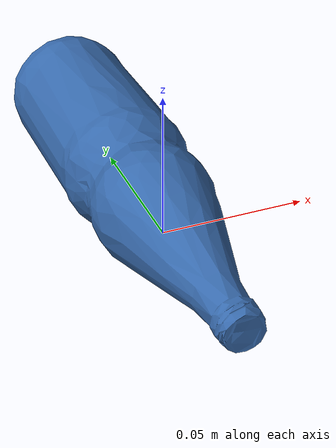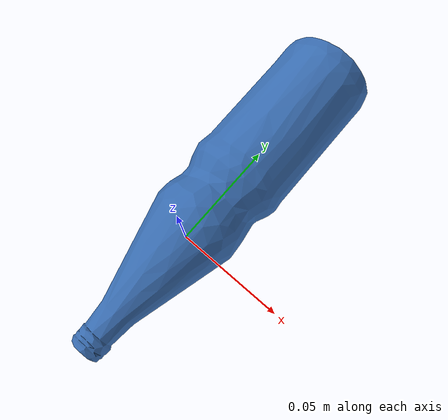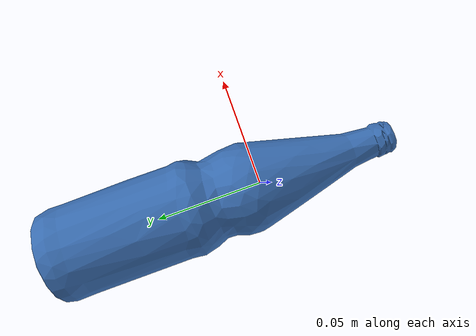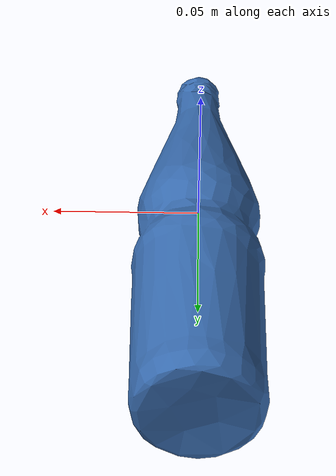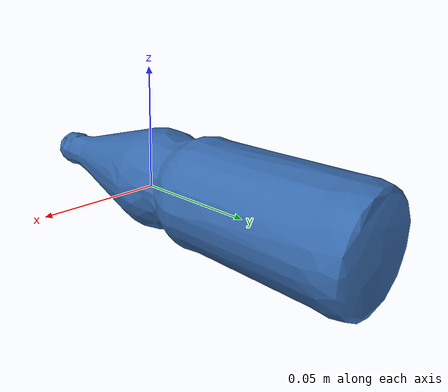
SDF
<sdf version="1.6">
  <model name="bottle9_4">
    <link name="link">
      <pose frame="">-0 0 0.005 0 -0 0</pose>
      <inertial>
        <mass>0.5</mass>
        <inertia>
          <ixx>0.0011992234782083333</ixx>
          <ixy>0</ixy>
          <ixz>0</ixz>
          <iyy>0.0011983893188333332</iyy>
          <iyz>0</iyz>
          <izz>0.00016790834070833332</izz>
        </inertia>
        <pose frame="">-1.5000000000000681e-05 0.019426000000000002 -4.2500000000002165e-05 1.57 0 3.14</pose>
      </inertial>
      <self_collide>0</self_collide>
      <kinematic>0</kinematic>
      <gravity>1</gravity>
      <visual name="visual">
        <geometry>
          <mesh>
            <uri>/home/zisu/simulator/siemens_challenge/sim_world/toolbox/bottle9_4.dae</uri>
          </mesh>
        </geometry>
        <pose frame="">0 0 0 0 -0 0</pose>
        <transparency>0</transparency>
        <cast_shadows>0</cast_shadows>
      </visual>
      <collision name="collision">
        <laser_retro>0</laser_retro>
        <max_contacts>10</max_contacts>
        <pose frame="">-1.5000000000000681e-05 0.019426000000000002 -4.2500000000002165e-05 1.57 0 3.14</pose>
        <geometry>
          <box>
            <size>0.044775999999999996 0.044999 0.163574</size>
          </box>
        </geometry>
        <surface>
          <friction>
            <ode>
              <mu>1</mu>
              <mu2>1</mu2>
              <fdir1>0 0 0</fdir1>
              <slip1>0</slip1>
              <slip2>0</slip2>
            </ode>
            <torsional>
              <coefficient>1</coefficient>
              <patch_radius>0</patch_radius>
              <surface_radius>0.05</surface_radius>
              <use_patch_radius>0</use_patch_radius>
              <ode>
                <slip>0</slip>
              </ode>
            </torsional>
          </friction>
          <bounce>
            <restitution_coefficient>0</restitution_coefficient>
            <threshold>1e+06</threshold>
          </bounce>
          <contact>
            <collide_without_contact>0</collide_without_contact>
            <collide_without_contact_bitmask>1</collide_without_contact_bitmask>
            <collide_bitmask>1</collide_bitmask>
            <ode>
              <soft_cfm>0</soft_cfm>
              <soft_erp>0.2</soft_erp>
              <kp>100000</kp>
              <kd>1</kd>
              <max_vel>1</max_vel>
              <min_depth>0.001</min_depth>
            </ode>
            <bullet>
              <split_impulse>1</split_impulse>
              <split_impulse_penetration_threshold>-0.01</split_impulse_penetration_threshold>
              <soft_cfm>0</soft_cfm>
              <soft_erp>0.2</soft_erp>
              <kp>100000</kp>
              <kd>1</kd>
            </bullet>
          </contact>
        </surface>
      </collision>
    </link>
    <static>0</static>
    <allow_auto_disable>1</allow_auto_disable>
  </model>
</sdf>
